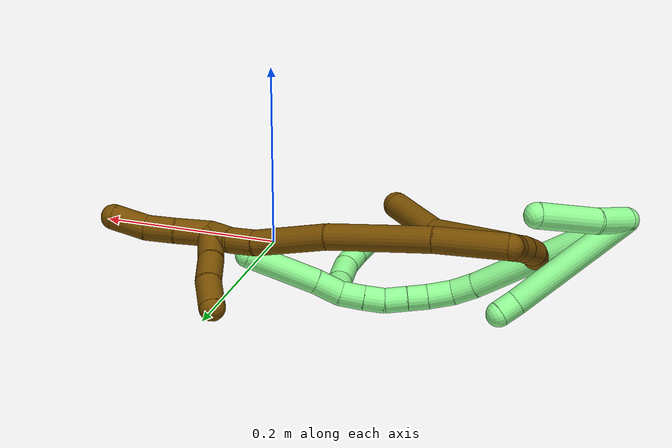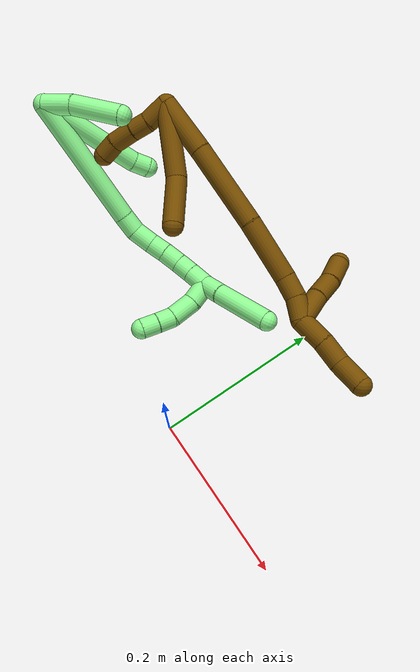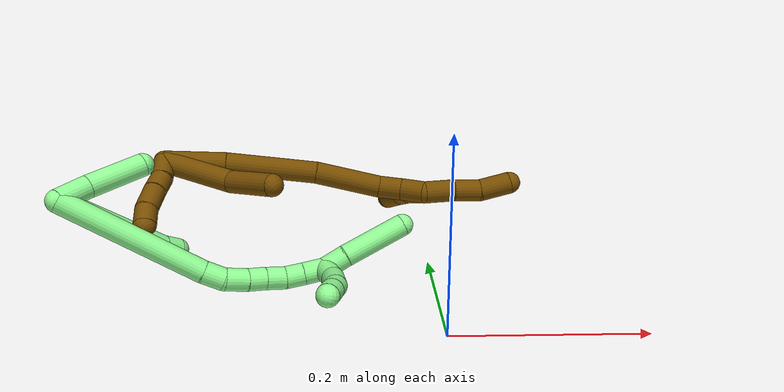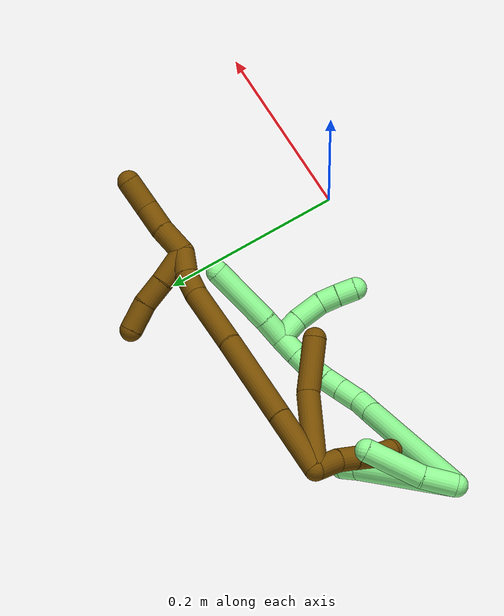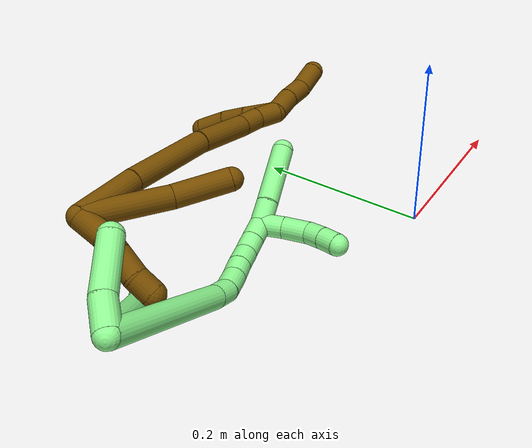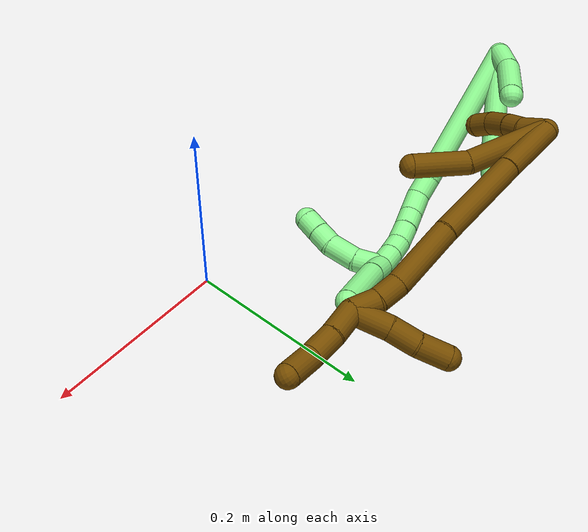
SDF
<sdf version="1.7">
 <world name="default">
  <model name="12">
   <static>0</static>
   <link name="12">
    <collision name="collision-cylinder-e_1_2_8">
     <pose>0.020158 -0.005438 -0.039777 3.00573 0.46532 2.58237</pose>
     <geometry><cylinder><radius>0.0125</radius><length>0.089848</length></cylinder></geometry>
     <surface>
      <friction><ode><mu>1.16</mu><mu2>1.16</mu2><slip1>0</slip1><slip2>0</slip2></ode></friction>
      <contact><ode><kp>1e+06</kp><kd>1</kd><max_vel>0</max_vel><min_depth>0.001</min_depth></ode></contact>
     </surface>
    </collision>
    <visual name="visual-cylinder-e_1_2_8">
     <pose>0.020158 -0.005438 -0.039777 3.00573 0.46532 2.58237</pose>
     <geometry><cylinder><radius>0.0125</radius><length>0.089848</length></cylinder></geometry>
     <material><ambient>0.466667 0.301961 0 1</ambient></material>
    </visual>
    <collision name="collision-cylinder-e_2_8_6">
     <pose>0.054181 -0.023491 -0.103074 2.64926 0.479141 1.54255</pose>
     <geometry><cylinder><radius>0.0125</radius><length>0.060152</length></cylinder></geometry>
     <surface>
      <friction><ode><mu>1.16</mu><mu2>1.16</mu2><slip1>0</slip1><slip2>0</slip2></ode></friction>
      <contact><ode><kp>1e+06</kp><kd>1</kd><max_vel>0</max_vel><min_depth>0.001</min_depth></ode></contact>
     </surface>
    </collision>
    <visual name="visual-cylinder-e_2_8_6">
     <pose>0.054181 -0.023491 -0.103074 2.64926 0.479141 1.54255</pose>
     <geometry><cylinder><radius>0.0125</radius><length>0.060152</length></cylinder></geometry>
     <material><ambient>0.466667 0.301961 0 1</ambient></material>
    </visual>
    <collision name="collision-cylinder-e_1_2_9">
     <pose>-0.007492 -0.00633 -0.010907 2.61573 -0.536076 -1.59097</pose>
     <geometry><cylinder><radius>0.0125</radius><length>0.029336</length></cylinder></geometry>
     <surface>
      <friction><ode><mu>1.16</mu><mu2>1.16</mu2><slip1>0</slip1><slip2>0</slip2></ode></friction>
      <contact><ode><kp>1e+06</kp><kd>1</kd><max_vel>0</max_vel><min_depth>0.001</min_depth></ode></contact>
     </surface>
    </collision>
    <visual name="visual-cylinder-e_1_2_9">
     <pose>-0.007492 -0.00633 -0.010907 2.61573 -0.536076 -1.59097</pose>
     <geometry><cylinder><radius>0.0125</radius><length>0.029336</length></cylinder></geometry>
     <material><ambient>0.466667 0.301961 0 1</ambient></material>
    </visual>
    <collision name="collision-cylinder-e_2_9_10">
     <pose>-0.022103 -0.017616 -0.027907 2.45873 -0.736347 -1.65284</pose>
     <geometry><cylinder><radius>0.0125</radius><length>0.021202</length></cylinder></geometry>
     <surface>
      <friction><ode><mu>1.16</mu><mu2>1.16</mu2><slip1>0</slip1><slip2>0</slip2></ode></friction>
      <contact><ode><kp>1e+06</kp><kd>1</kd><max_vel>0</max_vel><min_depth>0.001</min_depth></ode></contact>
     </surface>
    </collision>
    <visual name="visual-cylinder-e_2_9_10">
     <pose>-0.022103 -0.017616 -0.027907 2.45873 -0.736347 -1.65284</pose>
     <geometry><cylinder><radius>0.0125</radius><length>0.021202</length></cylinder></geometry>
     <material><ambient>0.466667 0.301961 0 1</ambient></material>
    </visual>
    <collision name="collision-cylinder-e_3_10_11">
     <pose>-0.038914 -0.027971 -0.042499 2.57572 -0.766292 -1.89182</pose>
     <geometry><cylinder><radius>0.0125</radius><length>0.02795</length></cylinder></geometry>
     <surface>
      <friction><ode><mu>1.16</mu><mu2>1.16</mu2><slip1>0</slip1><slip2>0</slip2></ode></friction>
      <contact><ode><kp>1e+06</kp><kd>1</kd><max_vel>0</max_vel><min_depth>0.001</min_depth></ode></contact>
     </surface>
    </collision>
    <visual name="visual-cylinder-e_3_10_11">
     <pose>-0.038914 -0.027971 -0.042499 2.57572 -0.766292 -1.89182</pose>
     <geometry><cylinder><radius>0.0125</radius><length>0.02795</length></cylinder></geometry>
     <material><ambient>0.466667 0.301961 0 1</ambient></material>
    </visual>
    <collision name="collision-cylinder-e_4_11_5">
     <pose>-0.054485 -0.036428 -0.05947 2.7951 -0.578414 -2.07829</pose>
     <geometry><cylinder><radius>0.0125</radius><length>0.021512</length></cylinder></geometry>
     <surface>
      <friction><ode><mu>1.16</mu><mu2>1.16</mu2><slip1>0</slip1><slip2>0</slip2></ode></friction>
      <contact><ode><kp>1e+06</kp><kd>1</kd><max_vel>0</max_vel><min_depth>0.001</min_depth></ode></contact>
     </surface>
    </collision>
    <visual name="visual-cylinder-e_4_11_5">
     <pose>-0.054485 -0.036428 -0.05947 2.7951 -0.578414 -2.07829</pose>
     <geometry><cylinder><radius>0.0125</radius><length>0.021512</length></cylinder></geometry>
     <material><ambient>0.466667 0.301961 0 1</ambient></material>
    </visual>
    <collision name="collision-cylinder-e_1_2_12">
     <pose>0.025769 0.00621 -0.022735 -2.87496 0.829976 -2.55061</pose>
     <geometry><cylinder><radius>0.0125</radius><length>0.069842</length></cylinder></geometry>
     <surface>
      <friction><ode><mu>1.16</mu><mu2>1.16</mu2><slip1>0</slip1><slip2>0</slip2></ode></friction>
      <contact><ode><kp>1e+06</kp><kd>1</kd><max_vel>0</max_vel><min_depth>0.001</min_depth></ode></contact>
     </surface>
    </collision>
    <visual name="visual-cylinder-e_1_2_12">
     <pose>0.025769 0.00621 -0.022735 -2.87496 0.829976 -2.55061</pose>
     <geometry><cylinder><radius>0.0125</radius><length>0.069842</length></cylinder></geometry>
     <material><ambient>0.466667 0.301961 0 1</ambient></material>
    </visual>
    <collision name="collision-cylinder-e_2_12_13">
     <pose>0.086702 0.023234 -0.081089 -2.84683 0.756949 -2.42697</pose>
     <geometry><cylinder><radius>0.0125</radius><length>0.102416</length></cylinder></geometry>
     <surface>
      <friction><ode><mu>1.16</mu><mu2>1.16</mu2><slip1>0</slip1><slip2>0</slip2></ode></friction>
      <contact><ode><kp>1e+06</kp><kd>1</kd><max_vel>0</max_vel><min_depth>0.001</min_depth></ode></contact>
     </surface>
    </collision>
    <visual name="visual-cylinder-e_2_12_13">
     <pose>0.086702 0.023234 -0.081089 -2.84683 0.756949 -2.42697</pose>
     <geometry><cylinder><radius>0.0125</radius><length>0.102416</length></cylinder></geometry>
     <material><ambient>0.466667 0.301961 0 1</ambient></material>
    </visual>
    <collision name="collision-cylinder-e_3_13_14">
     <pose>0.144079 0.044094 -0.144588 -2.79574 0.643215 -2.17587</pose>
     <geometry><cylinder><radius>0.0125</radius><length>0.074069</length></cylinder></geometry>
     <surface>
      <friction><ode><mu>1.16</mu><mu2>1.16</mu2><slip1>0</slip1><slip2>0</slip2></ode></friction>
      <contact><ode><kp>1e+06</kp><kd>1</kd><max_vel>0</max_vel><min_depth>0.001</min_depth></ode></contact>
     </surface>
    </collision>
    <visual name="visual-cylinder-e_3_13_14">
     <pose>0.144079 0.044094 -0.144588 -2.79574 0.643215 -2.17587</pose>
     <geometry><cylinder><radius>0.0125</radius><length>0.074069</length></cylinder></geometry>
     <material><ambient>0.466667 0.301961 0 1</ambient></material>
    </visual>
    <collision name="collision-cylinder-e_4_14_15">
     <pose>0.175026 0.055559 -0.182368 -2.99917 0.717885 -2.76585</pose>
     <geometry><cylinder><radius>0.0125</radius><length>0.026558</length></cylinder></geometry>
     <surface>
      <friction><ode><mu>1.16</mu><mu2>1.16</mu2><slip1>0</slip1><slip2>0</slip2></ode></friction>
      <contact><ode><kp>1e+06</kp><kd>1</kd><max_vel>0</max_vel><min_depth>0.001</min_depth></ode></contact>
     </surface>
    </collision>
    <visual name="visual-cylinder-e_4_14_15">
     <pose>0.175026 0.055559 -0.182368 -2.99917 0.717885 -2.76585</pose>
     <geometry><cylinder><radius>0.0125</radius><length>0.026558</length></cylinder></geometry>
     <material><ambient>0.466667 0.301961 0 1</ambient></material>
    </visual>
    <collision name="collision-cylinder-e_5_15_1">
     <pose>0.191291 0.055072 -0.203381 2.97161 0.588802 2.59375</pose>
     <geometry><cylinder><radius>0.0125</radius><length>0.027115</length></cylinder></geometry>
     <surface>
      <friction><ode><mu>1.16</mu><mu2>1.16</mu2><slip1>0</slip1><slip2>0</slip2></ode></friction>
      <contact><ode><kp>1e+06</kp><kd>1</kd><max_vel>0</max_vel><min_depth>0.001</min_depth></ode></contact>
     </surface>
    </collision>
    <visual name="visual-cylinder-e_5_15_1">
     <pose>0.191291 0.055072 -0.203381 2.97161 0.588802 2.59375</pose>
     <geometry><cylinder><radius>0.0125</radius><length>0.027115</length></cylinder></geometry>
     <material><ambient>0.466667 0.301961 0 1</ambient></material>
    </visual>
    <collision name="collision-cylinder-e_1_1_16">
     <pose>0.212796 0.057609 -0.22367 -2.69056 0.9405 -2.29362</pose>
     <geometry><cylinder><radius>0.0125</radius><length>0.034601</length></cylinder></geometry>
     <surface>
      <friction><ode><mu>1.16</mu><mu2>1.16</mu2><slip1>0</slip1><slip2>0</slip2></ode></friction>
      <contact><ode><kp>1e+06</kp><kd>1</kd><max_vel>0</max_vel><min_depth>0.001</min_depth></ode></contact>
     </surface>
    </collision>
    <visual name="visual-cylinder-e_1_1_16">
     <pose>0.212796 0.057609 -0.22367 -2.69056 0.9405 -2.29362</pose>
     <geometry><cylinder><radius>0.0125</radius><length>0.034601</length></cylinder></geometry>
     <material><ambient>0.466667 0.301961 0 1</ambient></material>
    </visual>
    <collision name="collision-cylinder-e_2_16_17">
     <pose>0.238208 0.064755 -0.24241 -2.86626 0.855353 -2.55145</pose>
     <geometry><cylinder><radius>0.0125</radius><length>0.0303</length></cylinder></geometry>
     <surface>
      <friction><ode><mu>1.16</mu><mu2>1.16</mu2><slip1>0</slip1><slip2>0</slip2></ode></friction>
      <contact><ode><kp>1e+06</kp><kd>1</kd><max_vel>0</max_vel><min_depth>0.001</min_depth></ode></contact>
     </surface>
    </collision>
    <visual name="visual-cylinder-e_2_16_17">
     <pose>0.238208 0.064755 -0.24241 -2.86626 0.855353 -2.55145</pose>
     <geometry><cylinder><radius>0.0125</radius><length>0.0303</length></cylinder></geometry>
     <material><ambient>0.466667 0.301961 0 1</ambient></material>
    </visual>
    <collision name="collision-cylinder-e_3_17_4">
     <pose>0.265275 0.068536 -0.259877 -3.00596 1.09897 -2.92068</pose>
     <geometry><cylinder><radius>0.0125</radius><length>0.035099</length></cylinder></geometry>
     <surface>
      <friction><ode><mu>1.16</mu><mu2>1.16</mu2><slip1>0</slip1><slip2>0</slip2></ode></friction>
      <contact><ode><kp>1e+06</kp><kd>1</kd><max_vel>0</max_vel><min_depth>0.001</min_depth></ode></contact>
     </surface>
    </collision>
    <visual name="visual-cylinder-e_3_17_4">
     <pose>0.265275 0.068536 -0.259877 -3.00596 1.09897 -2.92068</pose>
     <geometry><cylinder><radius>0.0125</radius><length>0.035099</length></cylinder></geometry>
     <material><ambient>0.466667 0.301961 0 1</ambient></material>
    </visual>
    <collision name="collision-cylinder-e_1_1_18">
     <pose>0.195943 0.068592 -0.203268 -0.941832 -0.149676 0.076308</pose>
     <geometry><cylinder><radius>0.0125</radius><length>0.038589</length></cylinder></geometry>
     <surface>
      <friction><ode><mu>1.16</mu><mu2>1.16</mu2><slip1>0</slip1><slip2>0</slip2></ode></friction>
      <contact><ode><kp>1e+06</kp><kd>1</kd><max_vel>0</max_vel><min_depth>0.001</min_depth></ode></contact>
     </surface>
    </collision>
    <visual name="visual-cylinder-e_1_1_18">
     <pose>0.195943 0.068592 -0.203268 -0.941832 -0.149676 0.076308</pose>
     <geometry><cylinder><radius>0.0125</radius><length>0.038589</length></cylinder></geometry>
     <material><ambient>0.466667 0.301961 0 1</ambient></material>
    </visual>
    <collision name="collision-cylinder-e_2_18_19">
     <pose>0.191332 0.096724 -0.184904 -1.05876 -0.11842 0.069339</pose>
     <geometry><cylinder><radius>0.0125</radius><length>0.029351</length></cylinder></geometry>
     <surface>
      <friction><ode><mu>1.16</mu><mu2>1.16</mu2><slip1>0</slip1><slip2>0</slip2></ode></friction>
      <contact><ode><kp>1e+06</kp><kd>1</kd><max_vel>0</max_vel><min_depth>0.001</min_depth></ode></contact>
     </surface>
    </collision>
    <visual name="visual-cylinder-e_2_18_19">
     <pose>0.191332 0.096724 -0.184904 -1.05876 -0.11842 0.069339</pose>
     <geometry><cylinder><radius>0.0125</radius><length>0.029351</length></cylinder></geometry>
     <material><ambient>0.466667 0.301961 0 1</ambient></material>
    </visual>
    <collision name="collision-cylinder-e_3_19_3">
     <pose>0.184804 0.122169 -0.169301 -0.984475 -0.303741 0.163783</pose>
     <geometry><cylinder><radius>0.0125</radius><length>0.03206</length></cylinder></geometry>
     <surface>
      <friction><ode><mu>1.16</mu><mu2>1.16</mu2><slip1>0</slip1><slip2>0</slip2></ode></friction>
      <contact><ode><kp>1e+06</kp><kd>1</kd><max_vel>0</max_vel><min_depth>0.001</min_depth></ode></contact>
     </surface>
    </collision>
    <visual name="visual-cylinder-e_3_19_3">
     <pose>0.184804 0.122169 -0.169301 -0.984475 -0.303741 0.163783</pose>
     <geometry><cylinder><radius>0.0125</radius><length>0.03206</length></cylinder></geometry>
     <material><ambient>0.466667 0.301961 0 1</ambient></material>
    </visual>
    <collision name="collision-sphere-3">
     <pose>0.180009 0.13491 -0.160838 0 -0 0</pose>
     <geometry><sphere><radius>0.0125</radius></sphere></geometry>
     <surface>
      <friction><ode><mu>1.16</mu><mu2>1.16</mu2><slip1>0</slip1><slip2>0</slip2></ode></friction>
      <contact><ode><kp>1e+06</kp><kd>1</kd><max_vel>0</max_vel><min_depth>0.001</min_depth></ode></contact>
     </surface>
    </collision>
    <visual name="visual-sphere-3">
     <pose>0.180009 0.13491 -0.160838 0 -0 0</pose>
     <geometry><sphere><radius>0.0125</radius></sphere></geometry>
     <material><ambient>0.466667 0.301961 0 1</ambient></material>
    </visual>
    <collision name="collision-sphere-19">
     <pose>0.189598 0.109428 -0.177764 0 -0 0</pose>
     <geometry><sphere><radius>0.0125</radius></sphere></geometry>
     <surface>
      <friction><ode><mu>1.16</mu><mu2>1.16</mu2><slip1>0</slip1><slip2>0</slip2></ode></friction>
      <contact><ode><kp>1e+06</kp><kd>1</kd><max_vel>0</max_vel><min_depth>0.001</min_depth></ode></contact>
     </surface>
    </collision>
    <visual name="visual-sphere-19">
     <pose>0.189598 0.109428 -0.177764 0 -0 0</pose>
     <geometry><sphere><radius>0.0125</radius></sphere></geometry>
     <material><ambient>0.466667 0.301961 0 1</ambient></material>
    </visual>
    <collision name="collision-sphere-11">
     <pose>-0.048605 -0.033369 -0.050999 0 -0 0</pose>
     <geometry><sphere><radius>0.0125</radius></sphere></geometry>
     <surface>
      <friction><ode><mu>1.16</mu><mu2>1.16</mu2><slip1>0</slip1><slip2>0</slip2></ode></friction>
      <contact><ode><kp>1e+06</kp><kd>1</kd><max_vel>0</max_vel><min_depth>0.001</min_depth></ode></contact>
     </surface>
    </collision>
    <visual name="visual-sphere-11">
     <pose>-0.048605 -0.033369 -0.050999 0 -0 0</pose>
     <geometry><sphere><radius>0.0125</radius></sphere></geometry>
     <material><ambient>0.466667 0.301961 0 1</ambient></material>
    </visual>
    <collision name="collision-sphere-10">
     <pose>-0.029223 -0.022573 -0.034 0 -0 0</pose>
     <geometry><sphere><radius>0.0125</radius></sphere></geometry>
     <surface>
      <friction><ode><mu>1.16</mu><mu2>1.16</mu2><slip1>0</slip1><slip2>0</slip2></ode></friction>
      <contact><ode><kp>1e+06</kp><kd>1</kd><max_vel>0</max_vel><min_depth>0.001</min_depth></ode></contact>
     </surface>
    </collision>
    <visual name="visual-sphere-10">
     <pose>-0.029223 -0.022573 -0.034 0 -0 0</pose>
     <geometry><sphere><radius>0.0125</radius></sphere></geometry>
     <material><ambient>0.466667 0.301961 0 1</ambient></material>
    </visual>
    <collision name="collision-sphere-6">
     <pose>0.068047 -0.036107 -0.126594 0 -0 0</pose>
     <geometry><sphere><radius>0.0125</radius></sphere></geometry>
     <surface>
      <friction><ode><mu>1.16</mu><mu2>1.16</mu2><slip1>0</slip1><slip2>0</slip2></ode></friction>
      <contact><ode><kp>1e+06</kp><kd>1</kd><max_vel>0</max_vel><min_depth>0.001</min_depth></ode></contact>
     </surface>
    </collision>
    <visual name="visual-sphere-6">
     <pose>0.068047 -0.036107 -0.126594 0 -0 0</pose>
     <geometry><sphere><radius>0.0125</radius></sphere></geometry>
     <material><ambient>0.466667 0.301961 0 1</ambient></material>
    </visual>
    <collision name="collision-sphere-9">
     <pose>-0.014984 -0.01266 -0.021813 0 -0 0</pose>
     <geometry><sphere><radius>0.0125</radius></sphere></geometry>
     <surface>
      <friction><ode><mu>1.16</mu><mu2>1.16</mu2><slip1>0</slip1><slip2>0</slip2></ode></friction>
      <contact><ode><kp>1e+06</kp><kd>1</kd><max_vel>0</max_vel><min_depth>0.001</min_depth></ode></contact>
     </surface>
    </collision>
    <visual name="visual-sphere-9">
     <pose>-0.014984 -0.01266 -0.021813 0 -0 0</pose>
     <geometry><sphere><radius>0.0125</radius></sphere></geometry>
     <material><ambient>0.466667 0.301961 0 1</ambient></material>
    </visual>
    <collision name="collision-sphere-2">
     <geometry><sphere><radius>0.0125</radius></sphere></geometry>
     <surface>
      <friction><ode><mu>1.16</mu><mu2>1.16</mu2><slip1>0</slip1><slip2>0</slip2></ode></friction>
      <contact><ode><kp>1e+06</kp><kd>1</kd><max_vel>0</max_vel><min_depth>0.001</min_depth></ode></contact>
     </surface>
    </collision>
    <visual name="visual-sphere-2">
     <geometry><sphere><radius>0.0125</radius></sphere></geometry>
     <material><ambient>0.466667 0.301961 0 1</ambient></material>
    </visual>
    <collision name="collision-sphere-8">
     <pose>0.040315 -0.010876 -0.079555 0 -0 0</pose>
     <geometry><sphere><radius>0.0125</radius></sphere></geometry>
     <surface>
      <friction><ode><mu>1.16</mu><mu2>1.16</mu2><slip1>0</slip1><slip2>0</slip2></ode></friction>
      <contact><ode><kp>1e+06</kp><kd>1</kd><max_vel>0</max_vel><min_depth>0.001</min_depth></ode></contact>
     </surface>
    </collision>
    <visual name="visual-sphere-8">
     <pose>0.040315 -0.010876 -0.079555 0 -0 0</pose>
     <geometry><sphere><radius>0.0125</radius></sphere></geometry>
     <material><ambient>0.466667 0.301961 0 1</ambient></material>
    </visual>
    <collision name="collision-sphere-5">
     <pose>-0.060366 -0.039486 -0.067941 0 -0 0</pose>
     <geometry><sphere><radius>0.0125</radius></sphere></geometry>
     <surface>
      <friction><ode><mu>1.16</mu><mu2>1.16</mu2><slip1>0</slip1><slip2>0</slip2></ode></friction>
      <contact><ode><kp>1e+06</kp><kd>1</kd><max_vel>0</max_vel><min_depth>0.001</min_depth></ode></contact>
     </surface>
    </collision>
    <visual name="visual-sphere-5">
     <pose>-0.060366 -0.039486 -0.067941 0 -0 0</pose>
     <geometry><sphere><radius>0.0125</radius></sphere></geometry>
     <material><ambient>0.466667 0.301961 0 1</ambient></material>
    </visual>
    <collision name="collision-sphere-12">
     <pose>0.051537 0.01242 -0.04547 0 -0 0</pose>
     <geometry><sphere><radius>0.0125</radius></sphere></geometry>
     <surface>
      <friction><ode><mu>1.16</mu><mu2>1.16</mu2><slip1>0</slip1><slip2>0</slip2></ode></friction>
      <contact><ode><kp>1e+06</kp><kd>1</kd><max_vel>0</max_vel><min_depth>0.001</min_depth></ode></contact>
     </surface>
    </collision>
    <visual name="visual-sphere-12">
     <pose>0.051537 0.01242 -0.04547 0 -0 0</pose>
     <geometry><sphere><radius>0.0125</radius></sphere></geometry>
     <material><ambient>0.466667 0.301961 0 1</ambient></material>
    </visual>
    <collision name="collision-sphere-13">
     <pose>0.121867 0.034048 -0.116709 0 -0 0</pose>
     <geometry><sphere><radius>0.0125</radius></sphere></geometry>
     <surface>
      <friction><ode><mu>1.16</mu><mu2>1.16</mu2><slip1>0</slip1><slip2>0</slip2></ode></friction>
      <contact><ode><kp>1e+06</kp><kd>1</kd><max_vel>0</max_vel><min_depth>0.001</min_depth></ode></contact>
     </surface>
    </collision>
    <visual name="visual-sphere-13">
     <pose>0.121867 0.034048 -0.116709 0 -0 0</pose>
     <geometry><sphere><radius>0.0125</radius></sphere></geometry>
     <material><ambient>0.466667 0.301961 0 1</ambient></material>
    </visual>
    <collision name="collision-sphere-14">
     <pose>0.166291 0.05414 -0.172468 0 -0 0</pose>
     <geometry><sphere><radius>0.0125</radius></sphere></geometry>
     <surface>
      <friction><ode><mu>1.16</mu><mu2>1.16</mu2><slip1>0</slip1><slip2>0</slip2></ode></friction>
      <contact><ode><kp>1e+06</kp><kd>1</kd><max_vel>0</max_vel><min_depth>0.001</min_depth></ode></contact>
     </surface>
    </collision>
    <visual name="visual-sphere-14">
     <pose>0.166291 0.05414 -0.172468 0 -0 0</pose>
     <geometry><sphere><radius>0.0125</radius></sphere></geometry>
     <material><ambient>0.466667 0.301961 0 1</ambient></material>
    </visual>
    <collision name="collision-sphere-15">
     <pose>0.183761 0.056979 -0.192269 0 -0 0</pose>
     <geometry><sphere><radius>0.0125</radius></sphere></geometry>
     <surface>
      <friction><ode><mu>1.16</mu><mu2>1.16</mu2><slip1>0</slip1><slip2>0</slip2></ode></friction>
      <contact><ode><kp>1e+06</kp><kd>1</kd><max_vel>0</max_vel><min_depth>0.001</min_depth></ode></contact>
     </surface>
    </collision>
    <visual name="visual-sphere-15">
     <pose>0.183761 0.056979 -0.192269 0 -0 0</pose>
     <geometry><sphere><radius>0.0125</radius></sphere></geometry>
     <material><ambient>0.466667 0.301961 0 1</ambient></material>
    </visual>
    <collision name="collision-sphere-1">
     <pose>0.19882 0.053164 -0.214493 0 -0 0</pose>
     <geometry><sphere><radius>0.0125</radius></sphere></geometry>
     <surface>
      <friction><ode><mu>1.16</mu><mu2>1.16</mu2><slip1>0</slip1><slip2>0</slip2></ode></friction>
      <contact><ode><kp>1e+06</kp><kd>1</kd><max_vel>0</max_vel><min_depth>0.001</min_depth></ode></contact>
     </surface>
    </collision>
    <visual name="visual-sphere-1">
     <pose>0.19882 0.053164 -0.214493 0 -0 0</pose>
     <geometry><sphere><radius>0.0125</radius></sphere></geometry>
     <material><ambient>0.466667 0.301961 0 1</ambient></material>
    </visual>
    <collision name="collision-sphere-18">
     <pose>0.193066 0.08402 -0.192044 0 -0 0</pose>
     <geometry><sphere><radius>0.0125</radius></sphere></geometry>
     <surface>
      <friction><ode><mu>1.16</mu><mu2>1.16</mu2><slip1>0</slip1><slip2>0</slip2></ode></friction>
      <contact><ode><kp>1e+06</kp><kd>1</kd><max_vel>0</max_vel><min_depth>0.001</min_depth></ode></contact>
     </surface>
    </collision>
    <visual name="visual-sphere-18">
     <pose>0.193066 0.08402 -0.192044 0 -0 0</pose>
     <geometry><sphere><radius>0.0125</radius></sphere></geometry>
     <material><ambient>0.466667 0.301961 0 1</ambient></material>
    </visual>
    <collision name="collision-sphere-16">
     <pose>0.226773 0.062054 -0.232847 0 -0 0</pose>
     <geometry><sphere><radius>0.0125</radius></sphere></geometry>
     <surface>
      <friction><ode><mu>1.16</mu><mu2>1.16</mu2><slip1>0</slip1><slip2>0</slip2></ode></friction>
      <contact><ode><kp>1e+06</kp><kd>1</kd><max_vel>0</max_vel><min_depth>0.001</min_depth></ode></contact>
     </surface>
    </collision>
    <visual name="visual-sphere-16">
     <pose>0.226773 0.062054 -0.232847 0 -0 0</pose>
     <geometry><sphere><radius>0.0125</radius></sphere></geometry>
     <material><ambient>0.466667 0.301961 0 1</ambient></material>
    </visual>
    <collision name="collision-sphere-17">
     <pose>0.249643 0.067457 -0.251973 0 -0 0</pose>
     <geometry><sphere><radius>0.0125</radius></sphere></geometry>
     <surface>
      <friction><ode><mu>1.16</mu><mu2>1.16</mu2><slip1>0</slip1><slip2>0</slip2></ode></friction>
      <contact><ode><kp>1e+06</kp><kd>1</kd><max_vel>0</max_vel><min_depth>0.001</min_depth></ode></contact>
     </surface>
    </collision>
    <visual name="visual-sphere-17">
     <pose>0.249643 0.067457 -0.251973 0 -0 0</pose>
     <geometry><sphere><radius>0.0125</radius></sphere></geometry>
     <material><ambient>0.466667 0.301961 0 1</ambient></material>
    </visual>
    <collision name="collision-sphere-4">
     <pose>0.280907 0.069614 -0.26778 0 -0 0</pose>
     <geometry><sphere><radius>0.0125</radius></sphere></geometry>
     <surface>
      <friction><ode><mu>1.16</mu><mu2>1.16</mu2><slip1>0</slip1><slip2>0</slip2></ode></friction>
      <contact><ode><kp>1e+06</kp><kd>1</kd><max_vel>0</max_vel><min_depth>0.001</min_depth></ode></contact>
     </surface>
    </collision>
    <visual name="visual-sphere-4">
     <pose>0.280907 0.069614 -0.26778 0 -0 0</pose>
     <geometry><sphere><radius>0.0125</radius></sphere></geometry>
     <material><ambient>0.466667 0.301961 0 1</ambient></material>
    </visual>
    <inertial>
     <pose>0.101736 0.027714 -0.116023 0 -0 0</pose>
     <mass>0.75</mass>
     <inertia>
      <ixx>-0.000152</ixx>
      <ixy>0</ixy>
      <ixz>0</ixz>
      <iyy>0.000188</iyy>
      <iyz>0</iyz>
      <izz>-0.000214</izz>
     </inertia>
    </inertial>
   </link>
   <pose>-0.301652 0.202462 0.124476 -0.852366 -0.610361 0.393548</pose>
  </model>
  <model name="13">
   <static>0</static>
   <link name="13">
    <collision name="collision-cylinder-e_1_2_8">
     <pose>-0.000476 -0.016895 -0.062685 2.87832 -0.007332 -0.055361</pose>
     <geometry><cylinder><radius>0.0125</radius><length>0.129847</length></cylinder></geometry>
     <surface>
      <friction><ode><mu>1.16</mu><mu2>1.16</mu2><slip1>0</slip1><slip2>0</slip2></ode></friction>
      <contact><ode><kp>1e+06</kp><kd>1</kd><max_vel>0</max_vel><min_depth>0.001</min_depth></ode></contact>
     </surface>
    </collision>
    <visual name="visual-cylinder-e_1_2_8">
     <pose>-0.000476 -0.016895 -0.062685 2.87832 -0.007332 -0.055361</pose>
     <geometry><cylinder><radius>0.0125</radius><length>0.129847</length></cylinder></geometry>
     <material><ambient>0.564706 0.984314 0.572549 1</ambient></material>
    </visual>
    <collision name="collision-cylinder-e_2_8_6">
     <pose>-0.001949 -0.034433 -0.135376 3.0775 -0.099115 -1.99399</pose>
     <geometry><cylinder><radius>0.0125</radius><length>0.020153</length></cylinder></geometry>
     <surface>
      <friction><ode><mu>1.16</mu><mu2>1.16</mu2><slip1>0</slip1><slip2>0</slip2></ode></friction>
      <contact><ode><kp>1e+06</kp><kd>1</kd><max_vel>0</max_vel><min_depth>0.001</min_depth></ode></contact>
     </surface>
    </collision>
    <visual name="visual-cylinder-e_2_8_6">
     <pose>-0.001949 -0.034433 -0.135376 3.0775 -0.099115 -1.99399</pose>
     <geometry><cylinder><radius>0.0125</radius><length>0.020153</length></cylinder></geometry>
     <material><ambient>0.564706 0.984314 0.572549 1</ambient></material>
    </visual>
    <collision name="collision-cylinder-e_1_2_9">
     <pose>-0.000649 0.009523 -0.015552 -2.59215 -0.035567 0.126039</pose>
     <geometry><cylinder><radius>0.0125</radius><length>0.036496</length></cylinder></geometry>
     <surface>
      <friction><ode><mu>1.16</mu><mu2>1.16</mu2><slip1>0</slip1><slip2>0</slip2></ode></friction>
      <contact><ode><kp>1e+06</kp><kd>1</kd><max_vel>0</max_vel><min_depth>0.001</min_depth></ode></contact>
     </surface>
    </collision>
    <visual name="visual-cylinder-e_1_2_9">
     <pose>-0.000649 0.009523 -0.015552 -2.59215 -0.035567 0.126039</pose>
     <geometry><cylinder><radius>0.0125</radius><length>0.036496</length></cylinder></geometry>
     <material><ambient>0.564706 0.984314 0.572549 1</ambient></material>
    </visual>
    <collision name="collision-cylinder-e_2_9_5">
     <pose>0.004252 0.034682 -0.058177 -2.61785 0.175677 -0.63491</pose>
     <geometry><cylinder><radius>0.0125</radius><length>0.063504</length></cylinder></geometry>
     <surface>
      <friction><ode><mu>1.16</mu><mu2>1.16</mu2><slip1>0</slip1><slip2>0</slip2></ode></friction>
      <contact><ode><kp>1e+06</kp><kd>1</kd><max_vel>0</max_vel><min_depth>0.001</min_depth></ode></contact>
     </surface>
    </collision>
    <visual name="visual-cylinder-e_2_9_5">
     <pose>0.004252 0.034682 -0.058177 -2.61785 0.175677 -0.63491</pose>
     <geometry><cylinder><radius>0.0125</radius><length>0.063504</length></cylinder></geometry>
     <material><ambient>0.564706 0.984314 0.572549 1</ambient></material>
    </visual>
    <collision name="collision-cylinder-e_1_2_10">
     <pose>0.031573 -0.029672 -0.069242 2.73675 0.39688 1.55038</pose>
     <geometry><cylinder><radius>0.0125</radius><length>0.163362</length></cylinder></geometry>
     <surface>
      <friction><ode><mu>1.16</mu><mu2>1.16</mu2><slip1>0</slip1><slip2>0</slip2></ode></friction>
      <contact><ode><kp>1e+06</kp><kd>1</kd><max_vel>0</max_vel><min_depth>0.001</min_depth></ode></contact>
     </surface>
    </collision>
    <visual name="visual-cylinder-e_1_2_10">
     <pose>0.031573 -0.029672 -0.069242 2.73675 0.39688 1.55038</pose>
     <geometry><cylinder><radius>0.0125</radius><length>0.163362</length></cylinder></geometry>
     <material><ambient>0.564706 0.984314 0.572549 1</ambient></material>
    </visual>
    <collision name="collision-cylinder-e_2_10_11">
     <pose>0.068156 -0.06245 -0.148758 2.84793 0.436698 1.96577</pose>
     <geometry><cylinder><radius>0.0125</radius><length>0.023689</length></cylinder></geometry>
     <surface>
      <friction><ode><mu>1.16</mu><mu2>1.16</mu2><slip1>0</slip1><slip2>0</slip2></ode></friction>
      <contact><ode><kp>1e+06</kp><kd>1</kd><max_vel>0</max_vel><min_depth>0.001</min_depth></ode></contact>
     </surface>
    </collision>
    <visual name="visual-cylinder-e_2_10_11">
     <pose>0.068156 -0.06245 -0.148758 2.84793 0.436698 1.96577</pose>
     <geometry><cylinder><radius>0.0125</radius><length>0.023689</length></cylinder></geometry>
     <material><ambient>0.564706 0.984314 0.572549 1</ambient></material>
    </visual>
    <collision name="collision-cylinder-e_3_11_12">
     <pose>0.077471 -0.064867 -0.171063 -3.08432 0.343164 -2.81394</pose>
     <geometry><cylinder><radius>0.0125</radius><length>0.025595</length></cylinder></geometry>
     <surface>
      <friction><ode><mu>1.16</mu><mu2>1.16</mu2><slip1>0</slip1><slip2>0</slip2></ode></friction>
      <contact><ode><kp>1e+06</kp><kd>1</kd><max_vel>0</max_vel><min_depth>0.001</min_depth></ode></contact>
     </surface>
    </collision>
    <visual name="visual-cylinder-e_3_11_12">
     <pose>0.077471 -0.064867 -0.171063 -3.08432 0.343164 -2.81394</pose>
     <geometry><cylinder><radius>0.0125</radius><length>0.025595</length></cylinder></geometry>
     <material><ambient>0.564706 0.984314 0.572549 1</ambient></material>
    </visual>
    <collision name="collision-cylinder-e_4_12_13">
     <pose>0.085217 -0.062646 -0.192395 -2.97846 0.34995 -2.27532</pose>
     <geometry><cylinder><radius>0.0125</radius><length>0.020068</length></cylinder></geometry>
     <surface>
      <friction><ode><mu>1.16</mu><mu2>1.16</mu2><slip1>0</slip1><slip2>0</slip2></ode></friction>
      <contact><ode><kp>1e+06</kp><kd>1</kd><max_vel>0</max_vel><min_depth>0.001</min_depth></ode></contact>
     </surface>
    </collision>
    <visual name="visual-cylinder-e_4_12_13">
     <pose>0.085217 -0.062646 -0.192395 -2.97846 0.34995 -2.27532</pose>
     <geometry><cylinder><radius>0.0125</radius><length>0.020068</length></cylinder></geometry>
     <material><ambient>0.564706 0.984314 0.572549 1</ambient></material>
    </visual>
    <collision name="collision-cylinder-e_5_13_14">
     <pose>0.092896 -0.059871 -0.211969 -3.0211 0.388745 -2.54692</pose>
     <geometry><cylinder><radius>0.0125</radius><length>0.022365</length></cylinder></geometry>
     <surface>
      <friction><ode><mu>1.16</mu><mu2>1.16</mu2><slip1>0</slip1><slip2>0</slip2></ode></friction>
      <contact><ode><kp>1e+06</kp><kd>1</kd><max_vel>0</max_vel><min_depth>0.001</min_depth></ode></contact>
     </surface>
    </collision>
    <visual name="visual-cylinder-e_5_13_14">
     <pose>0.092896 -0.059871 -0.211969 -3.0211 0.388745 -2.54692</pose>
     <geometry><cylinder><radius>0.0125</radius><length>0.022365</length></cylinder></geometry>
     <material><ambient>0.564706 0.984314 0.572549 1</ambient></material>
    </visual>
    <collision name="collision-cylinder-e_6_14_15">
     <pose>0.102358 -0.055614 -0.230837 -2.80444 0.52071 -2.0046</pose>
     <geometry><cylinder><radius>0.0125</radius><length>0.021</length></cylinder></geometry>
     <surface>
      <friction><ode><mu>1.16</mu><mu2>1.16</mu2><slip1>0</slip1><slip2>0</slip2></ode></friction>
      <contact><ode><kp>1e+06</kp><kd>1</kd><max_vel>0</max_vel><min_depth>0.001</min_depth></ode></contact>
     </surface>
    </collision>
    <visual name="visual-cylinder-e_6_14_15">
     <pose>0.102358 -0.055614 -0.230837 -2.80444 0.52071 -2.0046</pose>
     <geometry><cylinder><radius>0.0125</radius><length>0.021</length></cylinder></geometry>
     <material><ambient>0.564706 0.984314 0.572549 1</ambient></material>
    </visual>
    <collision name="collision-cylinder-e_7_15_1">
     <pose>0.11397 -0.048931 -0.248856 -2.77016 0.563372 -1.98988</pose>
     <geometry><cylinder><radius>0.0125</radius><length>0.023922</length></cylinder></geometry>
     <surface>
      <friction><ode><mu>1.16</mu><mu2>1.16</mu2><slip1>0</slip1><slip2>0</slip2></ode></friction>
      <contact><ode><kp>1e+06</kp><kd>1</kd><max_vel>0</max_vel><min_depth>0.001</min_depth></ode></contact>
     </surface>
    </collision>
    <visual name="visual-cylinder-e_7_15_1">
     <pose>0.11397 -0.048931 -0.248856 -2.77016 0.563372 -1.98988</pose>
     <geometry><cylinder><radius>0.0125</radius><length>0.023922</length></cylinder></geometry>
     <material><ambient>0.564706 0.984314 0.572549 1</ambient></material>
    </visual>
    <collision name="collision-cylinder-e_1_1_16">
     <pose>0.13243 -0.050307 -0.254149 0.885009 1.07556 0.550851</pose>
     <geometry><cylinder><radius>0.0125</radius><length>0.027442</length></cylinder></geometry>
     <surface>
      <friction><ode><mu>1.16</mu><mu2>1.16</mu2><slip1>0</slip1><slip2>0</slip2></ode></friction>
      <contact><ode><kp>1e+06</kp><kd>1</kd><max_vel>0</max_vel><min_depth>0.001</min_depth></ode></contact>
     </surface>
    </collision>
    <visual name="visual-cylinder-e_1_1_16">
     <pose>0.13243 -0.050307 -0.254149 0.885009 1.07556 0.550851</pose>
     <geometry><cylinder><radius>0.0125</radius><length>0.027442</length></cylinder></geometry>
     <material><ambient>0.564706 0.984314 0.572549 1</ambient></material>
    </visual>
    <collision name="collision-cylinder-e_2_16_17">
     <pose>0.15697 -0.059817 -0.241475 0.481401 0.912625 0.239818</pose>
     <geometry><cylinder><radius>0.0125</radius><length>0.03152</length></cylinder></geometry>
     <surface>
      <friction><ode><mu>1.16</mu><mu2>1.16</mu2><slip1>0</slip1><slip2>0</slip2></ode></friction>
      <contact><ode><kp>1e+06</kp><kd>1</kd><max_vel>0</max_vel><min_depth>0.001</min_depth></ode></contact>
     </surface>
    </collision>
    <visual name="visual-cylinder-e_2_16_17">
     <pose>0.15697 -0.059817 -0.241475 0.481401 0.912625 0.239818</pose>
     <geometry><cylinder><radius>0.0125</radius><length>0.03152</length></cylinder></geometry>
     <material><ambient>0.564706 0.984314 0.572549 1</ambient></material>
    </visual>
    <collision name="collision-cylinder-e_3_17_18">
     <pose>0.175733 -0.066688 -0.225292 0.305245 0.666117 0.106325</pose>
     <geometry><cylinder><radius>0.0125</radius><length>0.020375</length></cylinder></geometry>
     <surface>
      <friction><ode><mu>1.16</mu><mu2>1.16</mu2><slip1>0</slip1><slip2>0</slip2></ode></friction>
      <contact><ode><kp>1e+06</kp><kd>1</kd><max_vel>0</max_vel><min_depth>0.001</min_depth></ode></contact>
     </surface>
    </collision>
    <visual name="visual-cylinder-e_3_17_18">
     <pose>0.175733 -0.066688 -0.225292 0.305245 0.666117 0.106325</pose>
     <geometry><cylinder><radius>0.0125</radius><length>0.020375</length></cylinder></geometry>
     <material><ambient>0.564706 0.984314 0.572549 1</ambient></material>
    </visual>
    <collision name="collision-cylinder-e_4_18_4">
     <pose>0.188033 -0.071987 -0.209758 0.351111 0.62014 0.113546</pose>
     <geometry><cylinder><radius>0.0125</radius><length>0.020663</length></cylinder></geometry>
     <surface>
      <friction><ode><mu>1.16</mu><mu2>1.16</mu2><slip1>0</slip1><slip2>0</slip2></ode></friction>
      <contact><ode><kp>1e+06</kp><kd>1</kd><max_vel>0</max_vel><min_depth>0.001</min_depth></ode></contact>
     </surface>
    </collision>
    <visual name="visual-cylinder-e_4_18_4">
     <pose>0.188033 -0.071987 -0.209758 0.351111 0.62014 0.113546</pose>
     <geometry><cylinder><radius>0.0125</radius><length>0.020663</length></cylinder></geometry>
     <material><ambient>0.564706 0.984314 0.572549 1</ambient></material>
    </visual>
    <collision name="collision-cylinder-e_1_1_19">
     <pose>0.127389 -0.037269 -0.266768 -2.38639 0.542707 -1.22338</pose>
     <geometry><cylinder><radius>0.0125</radius><length>0.027232</length></cylinder></geometry>
     <surface>
      <friction><ode><mu>1.16</mu><mu2>1.16</mu2><slip1>0</slip1><slip2>0</slip2></ode></friction>
      <contact><ode><kp>1e+06</kp><kd>1</kd><max_vel>0</max_vel><min_depth>0.001</min_depth></ode></contact>
     </surface>
    </collision>
    <visual name="visual-cylinder-e_1_1_19">
     <pose>0.127389 -0.037269 -0.266768 -2.38639 0.542707 -1.22338</pose>
     <geometry><cylinder><radius>0.0125</radius><length>0.027232</length></cylinder></geometry>
     <material><ambient>0.564706 0.984314 0.572549 1</ambient></material>
    </visual>
    <collision name="collision-cylinder-e_2_19_3">
     <pose>0.151814 -0.009446 -0.300318 -2.47217 0.498424 -1.26344</pose>
     <geometry><cylinder><radius>0.0125</radius><length>0.072768</length></cylinder></geometry>
     <surface>
      <friction><ode><mu>1.16</mu><mu2>1.16</mu2><slip1>0</slip1><slip2>0</slip2></ode></friction>
      <contact><ode><kp>1e+06</kp><kd>1</kd><max_vel>0</max_vel><min_depth>0.001</min_depth></ode></contact>
     </surface>
    </collision>
    <visual name="visual-cylinder-e_2_19_3">
     <pose>0.151814 -0.009446 -0.300318 -2.47217 0.498424 -1.26344</pose>
     <geometry><cylinder><radius>0.0125</radius><length>0.072768</length></cylinder></geometry>
     <material><ambient>0.564706 0.984314 0.572549 1</ambient></material>
    </visual>
    <collision name="collision-sphere-3">
     <pose>0.169207 0.010385 -0.325379 0 -0 0</pose>
     <geometry><sphere><radius>0.0125</radius></sphere></geometry>
     <surface>
      <friction><ode><mu>1.16</mu><mu2>1.16</mu2><slip1>0</slip1><slip2>0</slip2></ode></friction>
      <contact><ode><kp>1e+06</kp><kd>1</kd><max_vel>0</max_vel><min_depth>0.001</min_depth></ode></contact>
     </surface>
    </collision>
    <visual name="visual-sphere-3">
     <pose>0.169207 0.010385 -0.325379 0 -0 0</pose>
     <geometry><sphere><radius>0.0125</radius></sphere></geometry>
     <material><ambient>0.564706 0.984314 0.572549 1</ambient></material>
    </visual>
    <collision name="collision-sphere-19">
     <pose>0.134421 -0.029277 -0.275258 0 -0 0</pose>
     <geometry><sphere><radius>0.0125</radius></sphere></geometry>
     <surface>
      <friction><ode><mu>1.16</mu><mu2>1.16</mu2><slip1>0</slip1><slip2>0</slip2></ode></friction>
      <contact><ode><kp>1e+06</kp><kd>1</kd><max_vel>0</max_vel><min_depth>0.001</min_depth></ode></contact>
     </surface>
    </collision>
    <visual name="visual-sphere-19">
     <pose>0.134421 -0.029277 -0.275258 0 -0 0</pose>
     <geometry><sphere><radius>0.0125</radius></sphere></geometry>
     <material><ambient>0.564706 0.984314 0.572549 1</ambient></material>
    </visual>
    <collision name="collision-sphere-10">
     <pose>0.063146 -0.059343 -0.138485 0 -0 0</pose>
     <geometry><sphere><radius>0.0125</radius></sphere></geometry>
     <surface>
      <friction><ode><mu>1.16</mu><mu2>1.16</mu2><slip1>0</slip1><slip2>0</slip2></ode></friction>
      <contact><ode><kp>1e+06</kp><kd>1</kd><max_vel>0</max_vel><min_depth>0.001</min_depth></ode></contact>
     </surface>
    </collision>
    <visual name="visual-sphere-10">
     <pose>0.063146 -0.059343 -0.138485 0 -0 0</pose>
     <geometry><sphere><radius>0.0125</radius></sphere></geometry>
     <material><ambient>0.564706 0.984314 0.572549 1</ambient></material>
    </visual>
    <collision name="collision-sphere-5">
     <pose>0.009801 0.050318 -0.08525 0 -0 0</pose>
     <geometry><sphere><radius>0.0125</radius></sphere></geometry>
     <surface>
      <friction><ode><mu>1.16</mu><mu2>1.16</mu2><slip1>0</slip1><slip2>0</slip2></ode></friction>
      <contact><ode><kp>1e+06</kp><kd>1</kd><max_vel>0</max_vel><min_depth>0.001</min_depth></ode></contact>
     </surface>
    </collision>
    <visual name="visual-sphere-5">
     <pose>0.009801 0.050318 -0.08525 0 -0 0</pose>
     <geometry><sphere><radius>0.0125</radius></sphere></geometry>
     <material><ambient>0.564706 0.984314 0.572549 1</ambient></material>
    </visual>
    <collision name="collision-sphere-6">
     <pose>-0.002946 -0.035075 -0.145382 0 -0 0</pose>
     <geometry><sphere><radius>0.0125</radius></sphere></geometry>
     <surface>
      <friction><ode><mu>1.16</mu><mu2>1.16</mu2><slip1>0</slip1><slip2>0</slip2></ode></friction>
      <contact><ode><kp>1e+06</kp><kd>1</kd><max_vel>0</max_vel><min_depth>0.001</min_depth></ode></contact>
     </surface>
    </collision>
    <visual name="visual-sphere-6">
     <pose>-0.002946 -0.035075 -0.145382 0 -0 0</pose>
     <geometry><sphere><radius>0.0125</radius></sphere></geometry>
     <material><ambient>0.564706 0.984314 0.572549 1</ambient></material>
    </visual>
    <collision name="collision-sphere-9">
     <pose>-0.001298 0.019047 -0.031105 0 -0 0</pose>
     <geometry><sphere><radius>0.0125</radius></sphere></geometry>
     <surface>
      <friction><ode><mu>1.16</mu><mu2>1.16</mu2><slip1>0</slip1><slip2>0</slip2></ode></friction>
      <contact><ode><kp>1e+06</kp><kd>1</kd><max_vel>0</max_vel><min_depth>0.001</min_depth></ode></contact>
     </surface>
    </collision>
    <visual name="visual-sphere-9">
     <pose>-0.001298 0.019047 -0.031105 0 -0 0</pose>
     <geometry><sphere><radius>0.0125</radius></sphere></geometry>
     <material><ambient>0.564706 0.984314 0.572549 1</ambient></material>
    </visual>
    <collision name="collision-sphere-2">
     <geometry><sphere><radius>0.0125</radius></sphere></geometry>
     <surface>
      <friction><ode><mu>1.16</mu><mu2>1.16</mu2><slip1>0</slip1><slip2>0</slip2></ode></friction>
      <contact><ode><kp>1e+06</kp><kd>1</kd><max_vel>0</max_vel><min_depth>0.001</min_depth></ode></contact>
     </surface>
    </collision>
    <visual name="visual-sphere-2">
     <geometry><sphere><radius>0.0125</radius></sphere></geometry>
     <material><ambient>0.564706 0.984314 0.572549 1</ambient></material>
    </visual>
    <collision name="collision-sphere-8">
     <pose>-0.000952 -0.033791 -0.125369 0 -0 0</pose>
     <geometry><sphere><radius>0.0125</radius></sphere></geometry>
     <surface>
      <friction><ode><mu>1.16</mu><mu2>1.16</mu2><slip1>0</slip1><slip2>0</slip2></ode></friction>
      <contact><ode><kp>1e+06</kp><kd>1</kd><max_vel>0</max_vel><min_depth>0.001</min_depth></ode></contact>
     </surface>
    </collision>
    <visual name="visual-sphere-8">
     <pose>-0.000952 -0.033791 -0.125369 0 -0 0</pose>
     <geometry><sphere><radius>0.0125</radius></sphere></geometry>
     <material><ambient>0.564706 0.984314 0.572549 1</ambient></material>
    </visual>
    <collision name="collision-sphere-11">
     <pose>0.073165 -0.065557 -0.159031 0 -0 0</pose>
     <geometry><sphere><radius>0.0125</radius></sphere></geometry>
     <surface>
      <friction><ode><mu>1.16</mu><mu2>1.16</mu2><slip1>0</slip1><slip2>0</slip2></ode></friction>
      <contact><ode><kp>1e+06</kp><kd>1</kd><max_vel>0</max_vel><min_depth>0.001</min_depth></ode></contact>
     </surface>
    </collision>
    <visual name="visual-sphere-11">
     <pose>0.073165 -0.065557 -0.159031 0 -0 0</pose>
     <geometry><sphere><radius>0.0125</radius></sphere></geometry>
     <material><ambient>0.564706 0.984314 0.572549 1</ambient></material>
    </visual>
    <collision name="collision-sphere-12">
     <pose>0.081777 -0.064177 -0.183094 0 -0 0</pose>
     <geometry><sphere><radius>0.0125</radius></sphere></geometry>
     <surface>
      <friction><ode><mu>1.16</mu><mu2>1.16</mu2><slip1>0</slip1><slip2>0</slip2></ode></friction>
      <contact><ode><kp>1e+06</kp><kd>1</kd><max_vel>0</max_vel><min_depth>0.001</min_depth></ode></contact>
     </surface>
    </collision>
    <visual name="visual-sphere-12">
     <pose>0.081777 -0.064177 -0.183094 0 -0 0</pose>
     <geometry><sphere><radius>0.0125</radius></sphere></geometry>
     <material><ambient>0.564706 0.984314 0.572549 1</ambient></material>
    </visual>
    <collision name="collision-sphere-13">
     <pose>0.088658 -0.061115 -0.201696 0 -0 0</pose>
     <geometry><sphere><radius>0.0125</radius></sphere></geometry>
     <surface>
      <friction><ode><mu>1.16</mu><mu2>1.16</mu2><slip1>0</slip1><slip2>0</slip2></ode></friction>
      <contact><ode><kp>1e+06</kp><kd>1</kd><max_vel>0</max_vel><min_depth>0.001</min_depth></ode></contact>
     </surface>
    </collision>
    <visual name="visual-sphere-13">
     <pose>0.088658 -0.061115 -0.201696 0 -0 0</pose>
     <geometry><sphere><radius>0.0125</radius></sphere></geometry>
     <material><ambient>0.564706 0.984314 0.572549 1</ambient></material>
    </visual>
    <collision name="collision-sphere-14">
     <pose>0.097134 -0.058627 -0.222242 0 -0 0</pose>
     <geometry><sphere><radius>0.0125</radius></sphere></geometry>
     <surface>
      <friction><ode><mu>1.16</mu><mu2>1.16</mu2><slip1>0</slip1><slip2>0</slip2></ode></friction>
      <contact><ode><kp>1e+06</kp><kd>1</kd><max_vel>0</max_vel><min_depth>0.001</min_depth></ode></contact>
     </surface>
    </collision>
    <visual name="visual-sphere-14">
     <pose>0.097134 -0.058627 -0.222242 0 -0 0</pose>
     <geometry><sphere><radius>0.0125</radius></sphere></geometry>
     <material><ambient>0.564706 0.984314 0.572549 1</ambient></material>
    </visual>
    <collision name="collision-sphere-15">
     <pose>0.107582 -0.052601 -0.239433 0 -0 0</pose>
     <geometry><sphere><radius>0.0125</radius></sphere></geometry>
     <surface>
      <friction><ode><mu>1.16</mu><mu2>1.16</mu2><slip1>0</slip1><slip2>0</slip2></ode></friction>
      <contact><ode><kp>1e+06</kp><kd>1</kd><max_vel>0</max_vel><min_depth>0.001</min_depth></ode></contact>
     </surface>
    </collision>
    <visual name="visual-sphere-15">
     <pose>0.107582 -0.052601 -0.239433 0 -0 0</pose>
     <geometry><sphere><radius>0.0125</radius></sphere></geometry>
     <material><ambient>0.564706 0.984314 0.572549 1</ambient></material>
    </visual>
    <collision name="collision-sphere-1">
     <pose>0.120357 -0.045261 -0.258279 0 -0 0</pose>
     <geometry><sphere><radius>0.0125</radius></sphere></geometry>
     <surface>
      <friction><ode><mu>1.16</mu><mu2>1.16</mu2><slip1>0</slip1><slip2>0</slip2></ode></friction>
      <contact><ode><kp>1e+06</kp><kd>1</kd><max_vel>0</max_vel><min_depth>0.001</min_depth></ode></contact>
     </surface>
    </collision>
    <visual name="visual-sphere-1">
     <pose>0.120357 -0.045261 -0.258279 0 -0 0</pose>
     <geometry><sphere><radius>0.0125</radius></sphere></geometry>
     <material><ambient>0.564706 0.984314 0.572549 1</ambient></material>
    </visual>
    <collision name="collision-sphere-18">
     <pose>0.182028 -0.069095 -0.217652 0 -0 0</pose>
     <geometry><sphere><radius>0.0125</radius></sphere></geometry>
     <surface>
      <friction><ode><mu>1.16</mu><mu2>1.16</mu2><slip1>0</slip1><slip2>0</slip2></ode></friction>
      <contact><ode><kp>1e+06</kp><kd>1</kd><max_vel>0</max_vel><min_depth>0.001</min_depth></ode></contact>
     </surface>
    </collision>
    <visual name="visual-sphere-18">
     <pose>0.182028 -0.069095 -0.217652 0 -0 0</pose>
     <geometry><sphere><radius>0.0125</radius></sphere></geometry>
     <material><ambient>0.564706 0.984314 0.572549 1</ambient></material>
    </visual>
    <collision name="collision-sphere-16">
     <pose>0.144502 -0.055354 -0.25002 0 -0 0</pose>
     <geometry><sphere><radius>0.0125</radius></sphere></geometry>
     <surface>
      <friction><ode><mu>1.16</mu><mu2>1.16</mu2><slip1>0</slip1><slip2>0</slip2></ode></friction>
      <contact><ode><kp>1e+06</kp><kd>1</kd><max_vel>0</max_vel><min_depth>0.001</min_depth></ode></contact>
     </surface>
    </collision>
    <visual name="visual-sphere-16">
     <pose>0.144502 -0.055354 -0.25002 0 -0 0</pose>
     <geometry><sphere><radius>0.0125</radius></sphere></geometry>
     <material><ambient>0.564706 0.984314 0.572549 1</ambient></material>
    </visual>
    <collision name="collision-sphere-17">
     <pose>0.169438 -0.064281 -0.232931 0 -0 0</pose>
     <geometry><sphere><radius>0.0125</radius></sphere></geometry>
     <surface>
      <friction><ode><mu>1.16</mu><mu2>1.16</mu2><slip1>0</slip1><slip2>0</slip2></ode></friction>
      <contact><ode><kp>1e+06</kp><kd>1</kd><max_vel>0</max_vel><min_depth>0.001</min_depth></ode></contact>
     </surface>
    </collision>
    <visual name="visual-sphere-17">
     <pose>0.169438 -0.064281 -0.232931 0 -0 0</pose>
     <geometry><sphere><radius>0.0125</radius></sphere></geometry>
     <material><ambient>0.564706 0.984314 0.572549 1</ambient></material>
    </visual>
    <collision name="collision-sphere-4">
     <pose>0.194037 -0.074878 -0.201863 0 -0 0</pose>
     <geometry><sphere><radius>0.0125</radius></sphere></geometry>
     <surface>
      <friction><ode><mu>1.16</mu><mu2>1.16</mu2><slip1>0</slip1><slip2>0</slip2></ode></friction>
      <contact><ode><kp>1e+06</kp><kd>1</kd><max_vel>0</max_vel><min_depth>0.001</min_depth></ode></contact>
     </surface>
    </collision>
    <visual name="visual-sphere-4">
     <pose>0.194037 -0.074878 -0.201863 0 -0 0</pose>
     <geometry><sphere><radius>0.0125</radius></sphere></geometry>
     <material><ambient>0.564706 0.984314 0.572549 1</ambient></material>
    </visual>
    <inertial>
     <pose>0.064171 -0.028098 -0.141832 0 -0 0</pose>
     <mass>0.75</mass>
     <inertia>
      <ixx>0.000529</ixx>
      <ixy>0</ixy>
      <ixz>0</ixz>
      <iyy>0.00015</iyy>
      <iyz>0</iyz>
      <izz>-6.5e-05</izz>
     </inertia>
    </inertial>
   </link>
   <pose>-0.388526 0.085923 0.114167 1.22942 -0.249201 -0.814374</pose>
  </model>
 </world>
</sdf>
